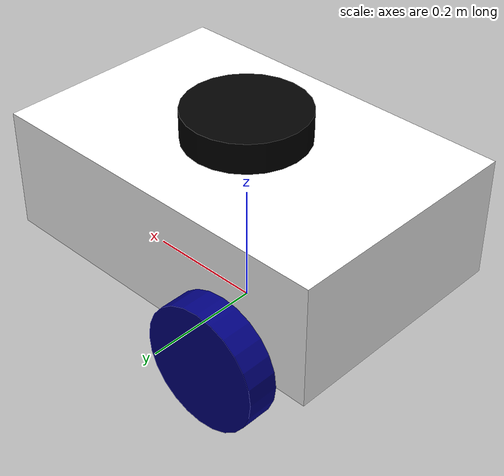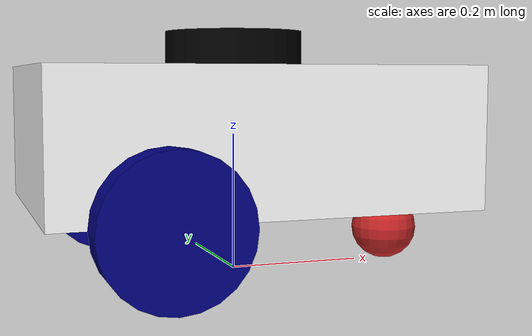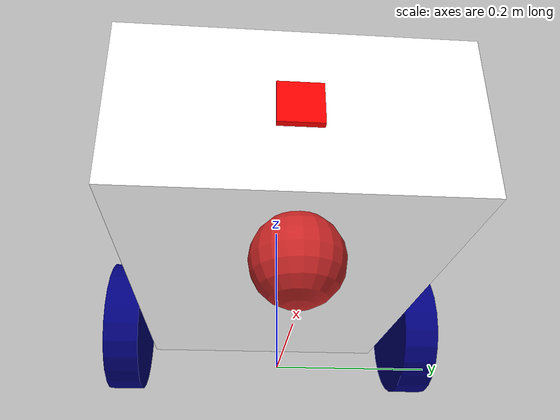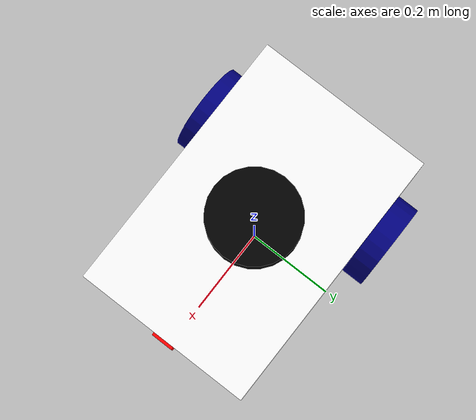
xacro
<?xml version="1.0"?>
<robot xmlns:xacro="http://www.ros.org/wiki/xacro" name="robot">

  <xacro:arg name="use_ros2_control" default="true"/>
  <xacro:arg name="sim_mode" default="false"/>

  <xacro:include filename="base_robot.xacro" />

  <xacro:if value="$(arg use_ros2_control)">
      <xacro:include filename="ros2_control.xacro" />
  </xacro:if>
  <xacro:unless value="$(arg use_ros2_control)">
      <xacro:include filename="gazebo_control.xacro" />
  </xacro:unless>

  <xacro:include filename="lidar.xacro"/>
  <xacro:include filename="camera.xacro"/>
</robot>

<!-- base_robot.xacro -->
<robot xmlns:xacro="http://www.ros.org/wiki/xacro">
  <xacro:include filename="inertial_micros.xacro"/>
  <!-- Define material only once -->
    <material name="white">
        <color rgba="1 1 1 1"/>
    </material>
    <material name="black">
        <color rgba="0 0 0 1"/>
    </material>
    <material name="blue">
        <color rgba="0 0 0.5 1" />
    </material>
    <material name="red">
        <color rgba="1 0 0 1" />
    </material>
    <material name="green">
        <color rgba="0 1 0 1"/>
    </material>

    <!--start link llllllllllllllllllllllllllllllllllllllllllllllllllll -->
    <link name="base_footprint" />

    <link name="base_link">
        <visual>
            <geometry>
                <box size="0.6 0.4 0.2"/>
            </geometry>
            <origin xyz="0 0 0.1" rpy="0 0 0"/>
            <!-- Apply material -->
            <material name="white"/>
        </visual>
        <collision>
            <geometry>
                <box size="0.6 0.4 0.2"/>
            </geometry>
            <origin xyz="0 0 0.1" rpy="0 0 0"/>
        </collision>
        <xacro:inertial_box mass="0.5" x="0.6" y="0.4" z="0.2">
          <origin xyz="0 0 0.1" rpy="0 0 0"/>
        </xacro:inertial_box>
    </link>

    <gazebo reference="base_link">
        <material>Gazebo/White</material>
    </gazebo>

 <!-- right wheeel -->
    <link name="right_wheel">
      <visual>
          <geometry>
            <cylinder radius="0.1" length="0.05"/>
          </geometry>
        <origin xyz="0 0 0" rpy="1.57 0 0"/>
        <material name="blue"/>
      </visual>
      <collision>
        <geometry>
          <cylinder radius="0.1" length="0.05"/>
        </geometry>
        <origin xyz="0 0 0" rpy="1.57 0 0"/>
      </collision>
      <xacro:inertial_cylinder mass="0.2" radius="0.1" length="0.05">
        <origin xyz="0 0 0" rpy="1.57 0 0"/>
      </xacro:inertial_cylinder>
    </link>

    <gazebo reference="right_wheel">
        <material>Gazebo/Blue</material>
    </gazebo>

<!-- left wheeeel -->
    <link name="left_wheel">
        <visual>
            <geometry>
                <cylinder radius="0.1" length="0.05"/>
            </geometry>
            <origin xyz="0 0 0" rpy="1.57 0 0"/>
            <material name="blue"/>
        </visual>
        <collision>
            <geometry>
                <cylinder radius="0.1" length="0.05"/>
            </geometry>
            <origin xyz="0 0 0" rpy="1.57 0 0"/>
        </collision>
        <xacro:inertial_cylinder mass="0.2" radius="0.1" length="0.05">
          <origin xyz="0 0 0" rpy="1.57 0 0"/>
        </xacro:inertial_cylinder>
    </link>

    <gazebo reference="left_wheel">
        <material>Gazebo/Blue</material>
    </gazebo>

    <link name="first_while">
        <visual>
            <geometry>
                    <sphere radius="0.05"/>
            </geometry>
            <origin xyz="0 0 0"/>
        </visual>
        <collision>
            <geometry>
                    <sphere radius="0.05"/>
            </geometry>
            <origin xyz="0 0 0"/>
        </collision>
        <xacro:inertial_sphere mass="0.1" radius="0.05">
          <origin xyz="0.0 0.0 0.0"/>
        </xacro:inertial_sphere>
    </link>

    <gazebo reference="first_while">
        <material>Gazebo/Red</material>
        <mu1 value="0.001"/>
        <mu2 value="0.001"/>
    </gazebo>

<!--lllllllllllllllllllllllllllllllllllllllllllllllllllllllllllllllllllllllink eded lllllllllllllllllllllllllllllllllll-->

    <joint name="base_right_wheel_joint" type="continuous">
        <parent link="base_link"/>
        <child link="right_wheel"/>
        <origin xyz="-0.15 -0.225 0" rpy="0 0 0"/>
        <axis xyz="0 1 0"/>
    </joint>
    <joint name="base_left_wheel_joint" type="continuous">
        <parent link="base_link"/>
        <child link="left_wheel"/>
        <origin xyz="-0.15 0.225 0" rpy="0 0 0"/>
        <axis xyz="0 1 0"/>
    </joint>
    <joint name="base_first_while_joint" type="fixed">
        <parent link="base_link"/>
        <child link="first_while"/>
        <origin xyz="0.25 0 -0.05"/>
    </joint>
    <joint name="base_joint" type="fixed">
        <parent link="base_footprint"/>
        <child link="base_link" />
        <origin xyz="0 0 0.1"/>
    </joint>

</robot>

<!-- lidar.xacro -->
<robot xmlns:xacro="http://www.ros.org/wiki/xacro" >

  <!-- LIDAR LINK -->
  <link name="laser_frame">
    <visual>
      <geometry>
        <cylinder radius="0.1" length="0.05"/>
      </geometry>
      <origin xyz="0 0 0" rpy="0 0 0"/>
      <material name="black"/>
    </visual>

    <collision>
      <geometry>
        <cylinder radius="0.1" length="0.05"/>
      </geometry>
    </collision>

    <xacro:inertial_cylinder mass="0.2" radius="0.1" length="0.05">
      <origin xyz="0 0 0" rpy="0 0 0"/>
    </xacro:inertial_cylinder>
  </link>

  <!-- FIXED JOINT -->
  <joint name="base_to_laser" type="fixed">
    <parent link="base_link"/>
    <child link="laser_frame"/>
    <origin xyz="0 0 0.225" rpy="0 0 0"/>
  </joint>

  <gazebo reference="laser_frame">
      <material>Gazebo/Red</material>
        <sensor name="laser" type="ray">
            <pose> 0 0 0 0 0 0 </pose>
            <visualize>true</visualize>
            <update_rate>10</update_rate>
            <ray>
                <scan>
                    <horizontal>
                        <samples>360</samples>
                        <min_angle>-3.14</min_angle>
                        <max_angle>3.14</max_angle>
                    </horizontal>
                </scan>
                <range>
                    <min>0.3</min>
                    <max>12</max>
                </range>
            </ray>
            <plugin name="laser_controller" filename="libgazebo_ros_ray_sensor.so">
                <ros>
                    <argument>~/out:=scan</argument>
                </ros>
                <output_type>sensor_msgs/LaserScan</output_type>
                <frame_name>laser_frame</frame_name>
            </plugin>
        </sensor>
    </gazebo>

</robot>

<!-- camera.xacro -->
<robot xmlns:xacro="http://www.ros.org/wiki/xacro" >

    <joint name="base_camera_joint" type="fixed">
        <parent link="base_link"/>
        <child link="camera_link"/>
        <origin xyz="0.3 0 0.1" rpy="0 0 0"/>
    </joint>

   <link name="camera_link">
        <visual>
            <geometry>
                <box size="0.015 0.05 0.05"/>
            </geometry>
            <origin xyz="0 0 0" rpy="0 0 0"/>
            <material name="red"/>
        </visual>

    </link>

    <joint name="camera_optical_joint" type="fixed">
        <parent link="camera_link"/>
        <child link="camera_link_optical"/>
        <origin xyz="0 0 0" rpy="${-pi/2} 0 ${-pi/2}"/>
    </joint>

   <link name="camera_link_optical"></link>

    <gazebo reference="camera_link">
        <material>Gazebo/Red</material>
        <sensor name="camera" type="camera">
            <pose> 0 0 0 0 0 0 </pose>
            <visualize>true</visualize>
            <update_rate>10</update_rate>
            <camera>
                <horizontal_fov>1.089</horizontal_fov>
                <image>
                    <format>R8G8B8</format>
                    <width>640</width>
                    <height>480</height>
                </image>
                <clip>
                    <near>0.05</near>
                    <far>8.0</far>
                </clip>
            </camera>

            <plugin name="camera_controller" filename="libgazebo_ros_camera.so">

                <frame_name>camera_link_optical</frame_name>
            </plugin>
        </sensor>
    </gazebo>

</robot>
